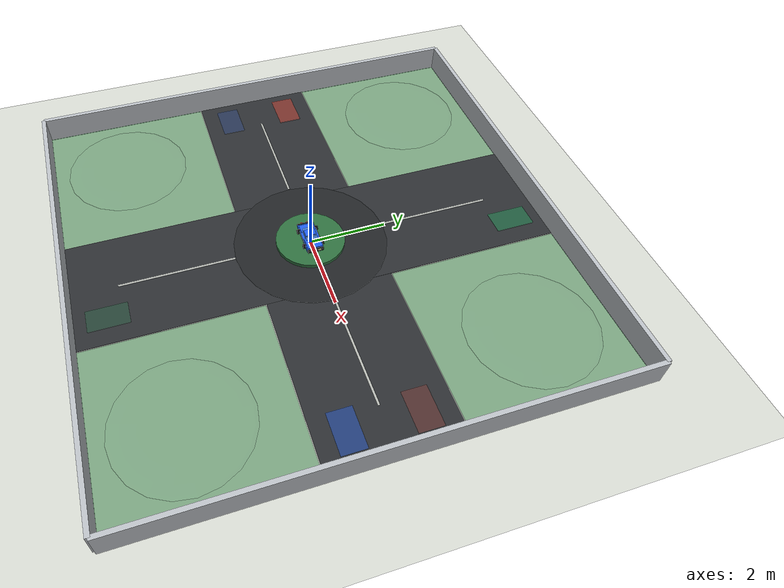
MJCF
<mujoco model="intersection3">
  <compiler angle="radian" autolimits="true"/>

  <option timestep="0.04" gravity="0 0 0" integrator="Euler"/>
  <statistic center="0 0 0.60" extent="8.8"/>

  <asset>
    <texture name="sky" type="skybox" builtin="flat" rgb1="0.96 0.98 1.0" width="64" height="64"/>
    <texture name="floor_tex" type="2d" builtin="checker" width="256" height="256" rgb1="0.86 0.87 0.84" rgb2="0.79 0.80 0.77"/>
    <material name="floor_mat" texture="floor_tex" texrepeat="10 10" texuniform="true" reflectance="0.04" specular="0.03" shininess="0.05"/>
    <material name="road_mat" rgba="0.17 0.18 0.19 1" specular="0.07" shininess="0.10"/>
    <material name="apron_mat" rgba="0.13 0.14 0.15 1" specular="0.06" shininess="0.10"/>
    <material name="lane_mat" rgba="0.92 0.93 0.90 0.75"/>
    <material name="island_mat" rgba="0.18 0.43 0.24 1" specular="0.08" shininess="0.16"/>
    <material name="soft_keepout_mat" rgba="0.22 0.50 0.28 0.55"/>
    <material name="wall_mat" rgba="0.72 0.74 0.76 1" specular="0.06" shininess="0.16"/>
    <material name="shadow_mat" rgba="0.02 0.02 0.03 0.15"/>
    <material name="glass_mat" rgba="0.45 0.65 0.82 0.55" specular="0.25" shininess="0.45"/>
    <material name="tire_mat" rgba="0.015 0.016 0.018 1" specular="0.10" shininess="0.20"/>
    <material name="rim_mat" rgba="0.78 0.80 0.78 1" specular="0.22" shininess="0.30"/>
    <material name="headlight_mat" rgba="1.00 0.92 0.55 1" emission="0.18"/>
    <material name="taillight_mat" rgba="0.95 0.05 0.04 1" emission="0.12"/>
    <material name="trim_mat" rgba="0.035 0.040 0.045 1" specular="0.10" shininess="0.20"/>
    <material name="drive_site_mat" rgba="1.0 0.86 0.22 0.40"/>
    <material name="car1_mat" rgba="0.12 0.36 0.90 1" specular="0.25" shininess="0.45"/>
    <material name="start1_mat" rgba="0.12 0.36 0.90 0.18"/>
    <material name="goal1_mat" rgba="0.12 0.36 0.90 0.42"/>
    <material name="car2_mat" rgba="0.90 0.25 0.18 1" specular="0.25" shininess="0.45"/>
    <material name="start2_mat" rgba="0.90 0.25 0.18 0.18"/>
    <material name="goal2_mat" rgba="0.90 0.25 0.18 0.42"/>
    <material name="car3_mat" rgba="0.10 0.62 0.34 1" specular="0.25" shininess="0.45"/>
    <material name="start3_mat" rgba="0.10 0.62 0.34 0.18"/>
    <material name="goal3_mat" rgba="0.10 0.62 0.34 0.42"/>
  </asset>

  <default>
    <geom contype="0" conaffinity="0"/>
    <site type="sphere" size="0.035"/>
  </default>

  <worldbody>
    <light name="key" pos="-3 -4 8" diffuse="0.92 0.92 0.92" specular="0.18 0.18 0.18"/>
    <camera name="top_down" mode="fixed" pos="0 0 13.0" xyaxes="1 0 0 0 1 0"/>
    <camera name="angle" mode="fixed" pos="0 -8.4 6.8" xyaxes="1 0 0 0 0.64 0.77"/>

    <geom name="floor" type="plane" pos="0 0 0" size="8.0 8.0 0.1" material="floor_mat"/>

    <geom name="road_horizontal" type="box" pos="0 0 0.010" size="6.05 1.58 0.010" material="road_mat"/>
    <geom name="road_vertical" type="box" pos="0 0 0.012" size="1.58 6.05 0.010" material="road_mat"/>
    <geom name="roundabout_apron" type="cylinder" pos="0 0 0.018" size="1.95 0.010" material="apron_mat"/>

    <geom name="center_line_h_w" type="box" pos="-3.4 0 0.045" size="1.45 0.025 0.006" material="lane_mat"/>
    <geom name="center_line_h_e" type="box" pos="3.4 0 0.045" size="1.45 0.025 0.006" material="lane_mat"/>
    <geom name="center_line_v_s" type="box" pos="0 -3.4 0.045" size="0.025 1.45 0.006" material="lane_mat"/>
    <geom name="center_line_v_n" type="box" pos="0 3.4 0.045" size="0.025 1.45 0.006" material="lane_mat"/>

    <geom name="wall_w" type="box" pos="-6.05 0 0.35" size="0.055 6.05 0.35" material="wall_mat"/>
    <geom name="wall_e" type="box" pos="6.05 0 0.35" size="0.055 6.05 0.35" material="wall_mat"/>
    <geom name="wall_s" type="box" pos="0 -6.05 0.35" size="6.05 0.055 0.35" material="wall_mat"/>
    <geom name="wall_n" type="box" pos="0 6.05 0.35" size="6.05 0.055 0.35" material="wall_mat"/>

    <geom name="central_island" type="cylinder" pos="0 0 0.070" size="0.88 0.060" material="island_mat"/>
    <geom name="offroad_nw_pad" type="box" pos="-3.82 3.82 0.006" size="2.22 2.22 0.004" material="soft_keepout_mat"/>
    <geom name="offroad_ne_pad" type="box" pos="3.82 3.82 0.006" size="2.22 2.22 0.004" material="soft_keepout_mat"/>
    <geom name="offroad_sw_pad" type="box" pos="-3.82 -3.82 0.006" size="2.22 2.22 0.004" material="soft_keepout_mat"/>
    <geom name="offroad_se_pad" type="box" pos="3.82 -3.82 0.006" size="2.22 2.22 0.004" material="soft_keepout_mat"/>
    <geom name="offroad_nw_core" type="ellipsoid" pos="-4.05 4.05 0.040" size="1.60 1.60 0.040" material="soft_keepout_mat"/>
    <geom name="offroad_ne_core" type="ellipsoid" pos="4.05 4.05 0.040" size="1.60 1.60 0.040" material="soft_keepout_mat"/>
    <geom name="offroad_sw_core" type="ellipsoid" pos="-4.05 -4.05 0.040" size="1.60 1.60 0.040" material="soft_keepout_mat"/>
    <geom name="offroad_se_core" type="ellipsoid" pos="4.05 -4.05 0.040" size="1.60 1.60 0.040" material="soft_keepout_mat"/>

    <geom name="start_car1" type="box" pos="-5.200 -0.850 0.050" size="0.500 0.300 0.010" material="start1_mat" euler="0 0 0.00000"/>
    <geom name="goal_car1" type="box" pos="5.200 -0.850 0.066" size="0.500 0.300 0.012" material="goal1_mat" euler="0 0 0.00000"/>
    <geom name="start_car2" type="box" pos="5.200 0.850 0.050" size="0.500 0.300 0.010" material="start2_mat" euler="0 0 3.14159"/>
    <geom name="goal_car2" type="box" pos="-5.200 0.850 0.066" size="0.500 0.300 0.012" material="goal2_mat" euler="0 0 3.14159"/>
    <geom name="start_car3" type="box" pos="0.850 -5.200 0.050" size="0.500 0.300 0.010" material="start3_mat" euler="0 0 1.57080"/>
    <geom name="goal_car3" type="box" pos="0.850 5.200 0.066" size="0.500 0.300 0.012" material="goal3_mat" euler="0 0 1.57080"/>

    <body name="car1" pos="0 0 0.180">
      <inertial pos="0 0 0" mass="1.20" diaginertia="0.050 0.050 0.080"/>
      <joint name="car1_x" type="slide" axis="1 0 0" limited="false" damping="0.55" armature="0.020"/>
      <joint name="car1_y" type="slide" axis="0 1 0" limited="false" damping="0.55" armature="0.020"/>
      <joint name="car1_yaw" type="hinge" axis="0 0 1" limited="false" damping="0.35" armature="0.012"/>

      <!-- Clear simple car silhouette: sedan-style skin built only from MuJoCo primitives. -->
      <geom name="car1_shadow" type="ellipsoid" pos="0 0 -0.172" size="0.54 0.31 0.006" material="shadow_mat"/>

      <geom name="car1_lower_body" type="box" pos="0.000 0 0.000" size="0.430 0.210 0.050" material="car1_mat"/>
      <geom name="car1_hood" type="box" pos="0.245 0 0.045" size="0.175 0.190 0.030" material="car1_mat"/>
      <geom name="car1_trunk" type="box" pos="-0.285 0 0.040" size="0.115 0.185 0.027" material="car1_mat"/>
      <geom name="car1_front_bumper" type="box" pos="0.455 0 0.012" size="0.035 0.205 0.032" material="trim_mat"/>
      <geom name="car1_rear_bumper" type="box" pos="-0.455 0 0.012" size="0.035 0.205 0.032" material="trim_mat"/>

      <geom name="car1_windshield" type="box" pos="0.070 0 0.086" size="0.075 0.145 0.022" material="glass_mat"/>
      <geom name="car1_roof" type="box" pos="-0.050 0 0.105" size="0.105 0.135 0.035" material="car1_mat"/>
      <geom name="car1_rear_window" type="box" pos="-0.175 0 0.084" size="0.070 0.140 0.020" material="glass_mat"/>
      <geom name="car1_left_window" type="box" pos="-0.050 0.142 0.092" size="0.100 0.012 0.020" material="glass_mat"/>
      <geom name="car1_right_window" type="box" pos="-0.050 -0.142 0.092" size="0.100 0.012 0.020" material="glass_mat"/>

      <geom name="car1_wheel_fl" type="cylinder" pos="0.245 0.230 -0.005" size="0.060 0.040" material="tire_mat" euler="1.5708 0 0"/>
      <geom name="car1_wheel_fr" type="cylinder" pos="0.245 -0.230 -0.005" size="0.060 0.040" material="tire_mat" euler="1.5708 0 0"/>
      <geom name="car1_wheel_rl" type="cylinder" pos="-0.265 0.230 -0.005" size="0.060 0.040" material="tire_mat" euler="1.5708 0 0"/>
      <geom name="car1_wheel_rr" type="cylinder" pos="-0.265 -0.230 -0.005" size="0.060 0.040" material="tire_mat" euler="1.5708 0 0"/>
      <geom name="car1_hub_fl" type="cylinder" pos="0.245 0.234 -0.005" size="0.030 0.006" material="rim_mat" euler="1.5708 0 0"/>
      <geom name="car1_hub_fr" type="cylinder" pos="0.245 -0.234 -0.005" size="0.030 0.006" material="rim_mat" euler="1.5708 0 0"/>
      <geom name="car1_hub_rl" type="cylinder" pos="-0.265 0.234 -0.005" size="0.030 0.006" material="rim_mat" euler="1.5708 0 0"/>
      <geom name="car1_hub_rr" type="cylinder" pos="-0.265 -0.234 -0.005" size="0.030 0.006" material="rim_mat" euler="1.5708 0 0"/>

      <geom name="car1_headlight_l" type="box" pos="0.494 0.090 0.035" size="0.010 0.040 0.012" material="headlight_mat"/>
      <geom name="car1_headlight_r" type="box" pos="0.494 -0.090 0.035" size="0.010 0.040 0.012" material="headlight_mat"/>
      <geom name="car1_taillight_l" type="box" pos="-0.494 0.080 0.032" size="0.010 0.035 0.012" material="taillight_mat"/>
      <geom name="car1_taillight_r" type="box" pos="-0.494 -0.080 0.032" size="0.010 0.035 0.012" material="taillight_mat"/>
      <geom name="car1_side_trim_l" type="box" pos="0.000 0.214 0.032" size="0.320 0.008 0.010" material="trim_mat"/>
      <geom name="car1_side_trim_r" type="box" pos="0.000 -0.214 0.032" size="0.320 0.008 0.010" material="trim_mat"/>

      <site name="car1_drive_site" pos="0 0 0.030" size="0.040" material="drive_site_mat"/>
      <site name="car1_center" pos="0 0 0.125" size="0.035" rgba="1 1 1 0.48"/>
    </body>
    <body name="car2" pos="0 0 0.180">
      <inertial pos="0 0 0" mass="1.20" diaginertia="0.050 0.050 0.080"/>
      <joint name="car2_x" type="slide" axis="1 0 0" limited="false" damping="0.55" armature="0.020"/>
      <joint name="car2_y" type="slide" axis="0 1 0" limited="false" damping="0.55" armature="0.020"/>
      <joint name="car2_yaw" type="hinge" axis="0 0 1" limited="false" damping="0.35" armature="0.012"/>

      <!-- Clear simple car silhouette: sedan-style skin built only from MuJoCo primitives. -->
      <geom name="car2_shadow" type="ellipsoid" pos="0 0 -0.172" size="0.54 0.31 0.006" material="shadow_mat"/>

      <geom name="car2_lower_body" type="box" pos="0.000 0 0.000" size="0.430 0.210 0.050" material="car2_mat"/>
      <geom name="car2_hood" type="box" pos="0.245 0 0.045" size="0.175 0.190 0.030" material="car2_mat"/>
      <geom name="car2_trunk" type="box" pos="-0.285 0 0.040" size="0.115 0.185 0.027" material="car2_mat"/>
      <geom name="car2_front_bumper" type="box" pos="0.455 0 0.012" size="0.035 0.205 0.032" material="trim_mat"/>
      <geom name="car2_rear_bumper" type="box" pos="-0.455 0 0.012" size="0.035 0.205 0.032" material="trim_mat"/>

      <geom name="car2_windshield" type="box" pos="0.070 0 0.086" size="0.075 0.145 0.022" material="glass_mat"/>
      <geom name="car2_roof" type="box" pos="-0.050 0 0.105" size="0.105 0.135 0.035" material="car2_mat"/>
      <geom name="car2_rear_window" type="box" pos="-0.175 0 0.084" size="0.070 0.140 0.020" material="glass_mat"/>
      <geom name="car2_left_window" type="box" pos="-0.050 0.142 0.092" size="0.100 0.012 0.020" material="glass_mat"/>
      <geom name="car2_right_window" type="box" pos="-0.050 -0.142 0.092" size="0.100 0.012 0.020" material="glass_mat"/>

      <geom name="car2_wheel_fl" type="cylinder" pos="0.245 0.230 -0.005" size="0.060 0.040" material="tire_mat" euler="1.5708 0 0"/>
      <geom name="car2_wheel_fr" type="cylinder" pos="0.245 -0.230 -0.005" size="0.060 0.040" material="tire_mat" euler="1.5708 0 0"/>
      <geom name="car2_wheel_rl" type="cylinder" pos="-0.265 0.230 -0.005" size="0.060 0.040" material="tire_mat" euler="1.5708 0 0"/>
      <geom name="car2_wheel_rr" type="cylinder" pos="-0.265 -0.230 -0.005" size="0.060 0.040" material="tire_mat" euler="1.5708 0 0"/>
      <geom name="car2_hub_fl" type="cylinder" pos="0.245 0.234 -0.005" size="0.030 0.006" material="rim_mat" euler="1.5708 0 0"/>
      <geom name="car2_hub_fr" type="cylinder" pos="0.245 -0.234 -0.005" size="0.030 0.006" material="rim_mat" euler="1.5708 0 0"/>
      <geom name="car2_hub_rl" type="cylinder" pos="-0.265 0.234 -0.005" size="0.030 0.006" material="rim_mat" euler="1.5708 0 0"/>
      <geom name="car2_hub_rr" type="cylinder" pos="-0.265 -0.234 -0.005" size="0.030 0.006" material="rim_mat" euler="1.5708 0 0"/>

      <geom name="car2_headlight_l" type="box" pos="0.494 0.090 0.035" size="0.010 0.040 0.012" material="headlight_mat"/>
      <geom name="car2_headlight_r" type="box" pos="0.494 -0.090 0.035" size="0.010 0.040 0.012" material="headlight_mat"/>
      <geom name="car2_taillight_l" type="box" pos="-0.494 0.080 0.032" size="0.010 0.035 0.012" material="taillight_mat"/>
      <geom name="car2_taillight_r" type="box" pos="-0.494 -0.080 0.032" size="0.010 0.035 0.012" material="taillight_mat"/>
      <geom name="car2_side_trim_l" type="box" pos="0.000 0.214 0.032" size="0.320 0.008 0.010" material="trim_mat"/>
      <geom name="car2_side_trim_r" type="box" pos="0.000 -0.214 0.032" size="0.320 0.008 0.010" material="trim_mat"/>

      <site name="car2_drive_site" pos="0 0 0.030" size="0.040" material="drive_site_mat"/>
      <site name="car2_center" pos="0 0 0.125" size="0.035" rgba="1 1 1 0.48"/>
    </body>
    <body name="car3" pos="0 0 0.180">
      <inertial pos="0 0 0" mass="1.20" diaginertia="0.050 0.050 0.080"/>
      <joint name="car3_x" type="slide" axis="1 0 0" limited="false" damping="0.55" armature="0.020"/>
      <joint name="car3_y" type="slide" axis="0 1 0" limited="false" damping="0.55" armature="0.020"/>
      <joint name="car3_yaw" type="hinge" axis="0 0 1" limited="false" damping="0.35" armature="0.012"/>

      <!-- Clear simple car silhouette: sedan-style skin built only from MuJoCo primitives. -->
      <geom name="car3_shadow" type="ellipsoid" pos="0 0 -0.172" size="0.54 0.31 0.006" material="shadow_mat"/>

      <geom name="car3_lower_body" type="box" pos="0.000 0 0.000" size="0.430 0.210 0.050" material="car3_mat"/>
      <geom name="car3_hood" type="box" pos="0.245 0 0.045" size="0.175 0.190 0.030" material="car3_mat"/>
      <geom name="car3_trunk" type="box" pos="-0.285 0 0.040" size="0.115 0.185 0.027" material="car3_mat"/>
      <geom name="car3_front_bumper" type="box" pos="0.455 0 0.012" size="0.035 0.205 0.032" material="trim_mat"/>
      <geom name="car3_rear_bumper" type="box" pos="-0.455 0 0.012" size="0.035 0.205 0.032" material="trim_mat"/>

      <geom name="car3_windshield" type="box" pos="0.070 0 0.086" size="0.075 0.145 0.022" material="glass_mat"/>
      <geom name="car3_roof" type="box" pos="-0.050 0 0.105" size="0.105 0.135 0.035" material="car3_mat"/>
      <geom name="car3_rear_window" type="box" pos="-0.175 0 0.084" size="0.070 0.140 0.020" material="glass_mat"/>
      <geom name="car3_left_window" type="box" pos="-0.050 0.142 0.092" size="0.100 0.012 0.020" material="glass_mat"/>
      <geom name="car3_right_window" type="box" pos="-0.050 -0.142 0.092" size="0.100 0.012 0.020" material="glass_mat"/>

      <geom name="car3_wheel_fl" type="cylinder" pos="0.245 0.230 -0.005" size="0.060 0.040" material="tire_mat" euler="1.5708 0 0"/>
      <geom name="car3_wheel_fr" type="cylinder" pos="0.245 -0.230 -0.005" size="0.060 0.040" material="tire_mat" euler="1.5708 0 0"/>
      <geom name="car3_wheel_rl" type="cylinder" pos="-0.265 0.230 -0.005" size="0.060 0.040" material="tire_mat" euler="1.5708 0 0"/>
      <geom name="car3_wheel_rr" type="cylinder" pos="-0.265 -0.230 -0.005" size="0.060 0.040" material="tire_mat" euler="1.5708 0 0"/>
      <geom name="car3_hub_fl" type="cylinder" pos="0.245 0.234 -0.005" size="0.030 0.006" material="rim_mat" euler="1.5708 0 0"/>
      <geom name="car3_hub_fr" type="cylinder" pos="0.245 -0.234 -0.005" size="0.030 0.006" material="rim_mat" euler="1.5708 0 0"/>
      <geom name="car3_hub_rl" type="cylinder" pos="-0.265 0.234 -0.005" size="0.030 0.006" material="rim_mat" euler="1.5708 0 0"/>
      <geom name="car3_hub_rr" type="cylinder" pos="-0.265 -0.234 -0.005" size="0.030 0.006" material="rim_mat" euler="1.5708 0 0"/>

      <geom name="car3_headlight_l" type="box" pos="0.494 0.090 0.035" size="0.010 0.040 0.012" material="headlight_mat"/>
      <geom name="car3_headlight_r" type="box" pos="0.494 -0.090 0.035" size="0.010 0.040 0.012" material="headlight_mat"/>
      <geom name="car3_taillight_l" type="box" pos="-0.494 0.080 0.032" size="0.010 0.035 0.012" material="taillight_mat"/>
      <geom name="car3_taillight_r" type="box" pos="-0.494 -0.080 0.032" size="0.010 0.035 0.012" material="taillight_mat"/>
      <geom name="car3_side_trim_l" type="box" pos="0.000 0.214 0.032" size="0.320 0.008 0.010" material="trim_mat"/>
      <geom name="car3_side_trim_r" type="box" pos="0.000 -0.214 0.032" size="0.320 0.008 0.010" material="trim_mat"/>

      <site name="car3_drive_site" pos="0 0 0.030" size="0.040" material="drive_site_mat"/>
      <site name="car3_center" pos="0 0 0.125" size="0.035" rgba="1 1 1 0.48"/>
    </body>
  </worldbody>

  <actuator>
    <motor name="car1_drive_force" site="car1_drive_site" gear="1 0 0 0 0 0" ctrllimited="true" ctrlrange="-3.0 5.5"/>
    <motor name="car1_yaw_torque" joint="car1_yaw" gear="1" ctrllimited="true" ctrlrange="-3.2 3.2"/>
    <motor name="car1_lateral_tire_force" site="car1_drive_site" gear="0 1 0 0 0 0" ctrllimited="true" ctrlrange="-10.0 10.0"/>
    <motor name="car2_drive_force" site="car2_drive_site" gear="1 0 0 0 0 0" ctrllimited="true" ctrlrange="-3.0 5.5"/>
    <motor name="car2_yaw_torque" joint="car2_yaw" gear="1" ctrllimited="true" ctrlrange="-3.2 3.2"/>
    <motor name="car2_lateral_tire_force" site="car2_drive_site" gear="0 1 0 0 0 0" ctrllimited="true" ctrlrange="-10.0 10.0"/>
    <motor name="car3_drive_force" site="car3_drive_site" gear="1 0 0 0 0 0" ctrllimited="true" ctrlrange="-3.0 5.5"/>
    <motor name="car3_yaw_torque" joint="car3_yaw" gear="1" ctrllimited="true" ctrlrange="-3.2 3.2"/>
    <motor name="car3_lateral_tire_force" site="car3_drive_site" gear="0 1 0 0 0 0" ctrllimited="true" ctrlrange="-10.0 10.0"/>
  </actuator>

  <keyframe>
    <key name="starts" qpos="-5.20000 -0.85000 0.00000 5.20000 0.85000 3.14159 0.85000 -5.20000 1.57080" ctrl="0 0 0 0 0 0 0 0 0"/>
  </keyframe>
</mujoco>
